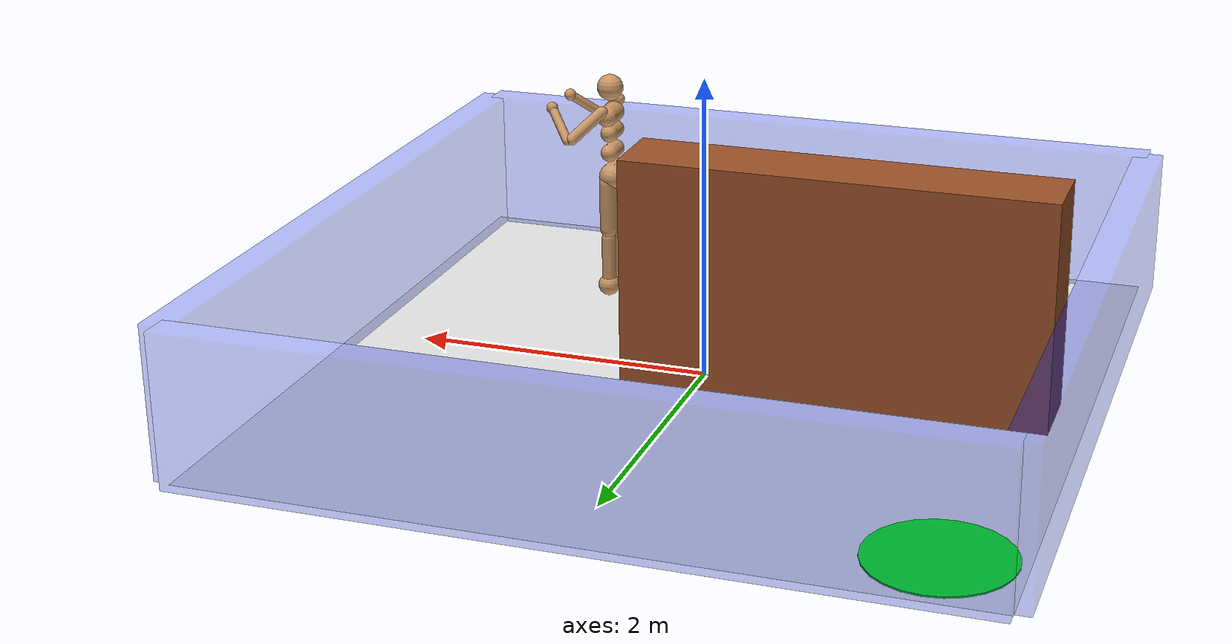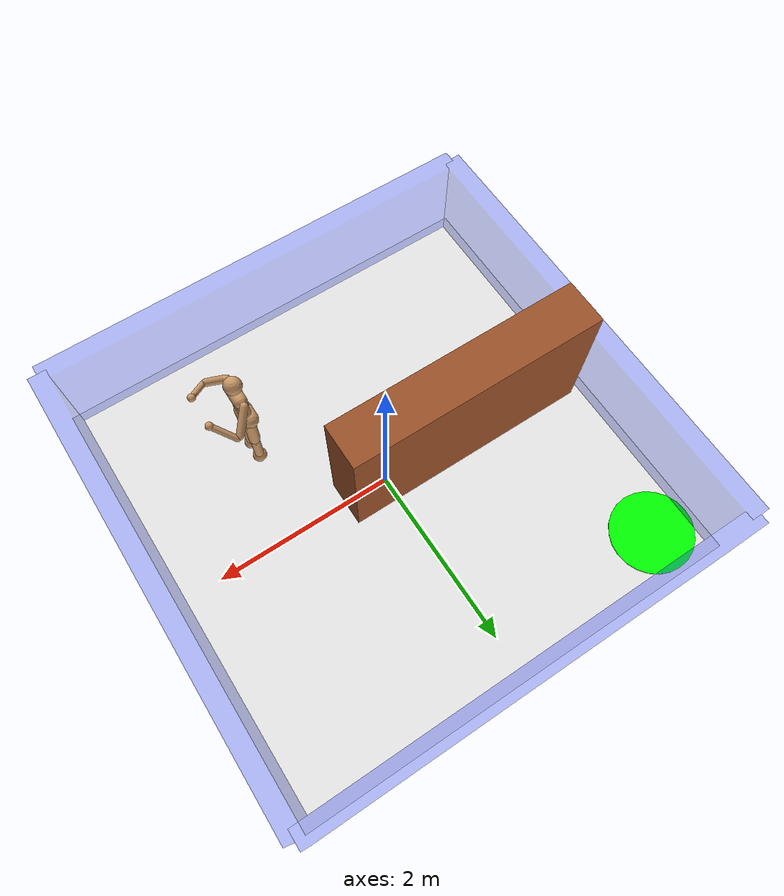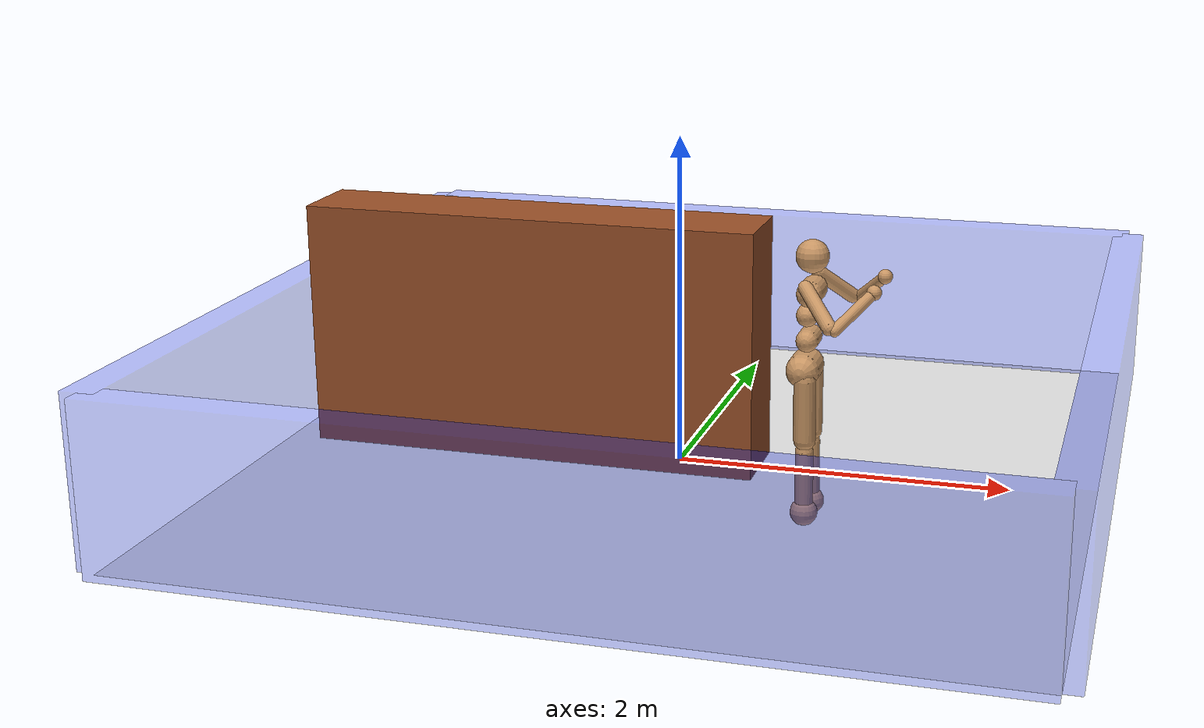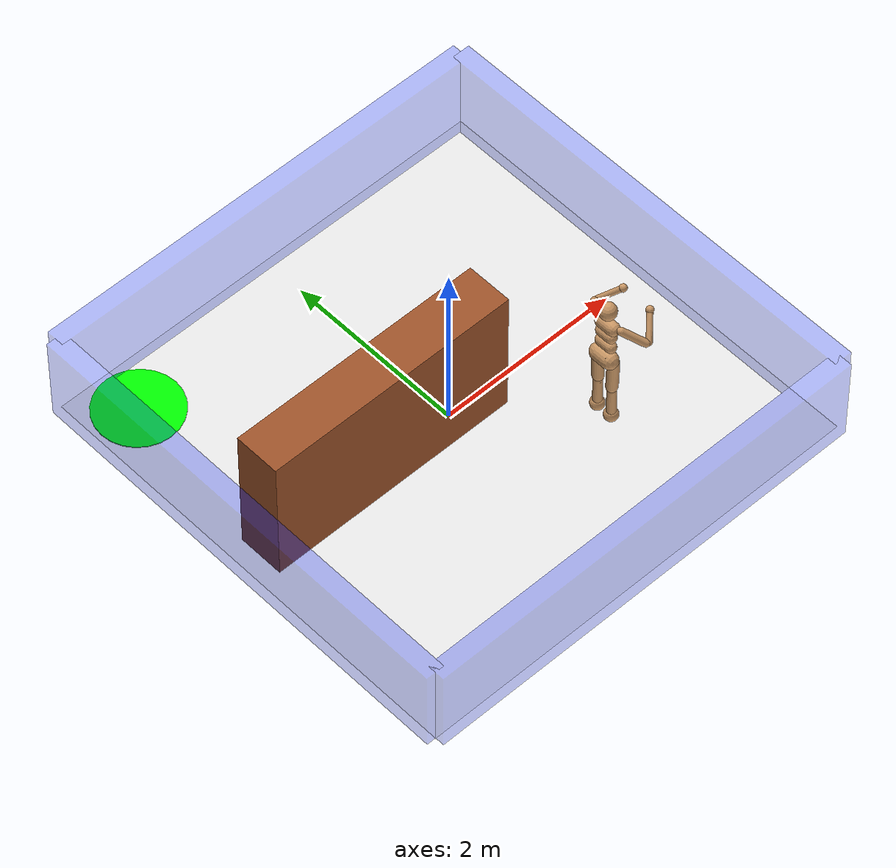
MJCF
<mujoco model="humanoid">
	<compiler inertiafromgeom="true" angle="degree"/>
    	<default>
        	<joint armature="1" damping="1" limited="true"/>
       		 <geom conaffinity="1" condim="1" contype="1" margin="0.001"  rgba="0.8 0.6 .4 1"/>
        	<motor ctrllimited="true" ctrlrange="-.4 .4"/>
    	</default>
    	<option integrator="RK4" iterations="50" solver="PGS" timestep="0.003">
    	</option>

	<asset>
		<texture name="texgeom" type="cube" builtin="flat" mark="cross" width="127" height="1278" rgb1="0.8 0.6 0.4" rgb2="0.8 0.6 0.4" markrgb="1 1 1" random="0.01" />
		<material name='geom' texture="texgeom" texuniform="true" />
	</asset>

	<worldbody>
		<light diffuse=".2 .2 .2" dir="0 0 -1" pos="0 0 2.5" />
		<!--light cutoff="100" diffuse="1 1 1" dir="-0 0 -1.3" directional="true" exponent="1" pos="0 0 1.3" specular=".1 .1 .1"/-->
		<geom conaffinity="1" condim="3" pos="0 0 0" size="2.5 2.5 2.5" rgba="0.9 0.9 0.9 1" type="plane" />
        	<body name="torso" pos="1 -1 1.4">
            		<joint armature="0" damping="0" limited="false" name="root" pos="0 0 0" stiffness="0" type="free"/>
            		<geom fromto="0 -.07 0 0 .07 0" name="torso1" size="0.07" type="capsule"/>
            		<geom name="head" pos="0 0 .19" size=".09" type="sphere" user="258"/>
            		<geom fromto="-.01 -.06 -.12 -.01 .06 -.12" name="uwaist" size="0.06" type="capsule"/>
            		<body name="lwaist" pos="-.01 0 -0.260" quat="1.000 0 -0.002 0">
                		<geom fromto="0 -.06 0 0 .06 0" name="lwaist" size="0.06" type="capsule"/>
                		<joint armature="0.02" axis="0 0 1" damping="5" name="abdomen_z" pos="0 0 0.065" range="-45 45" stiffness="20" type="hinge"/>
                		<joint armature="0.02" axis="0 1 0" damping="5" name="abdomen_y" pos="0 0 0.065" range="-75 30" stiffness="10" type="hinge"/>
                		<body name="pelvis" pos="0 0 -0.165" quat="1.000 0 -0.002 0">
                    			<joint armature="0.02" axis="1 0 0" damping="5" name="abdomen_x" pos="0 0 0.1" range="-35 35" stiffness="10" type="hinge"/>
                    			<geom fromto="-.02 -.07 0 -.02 .07 0" name="butt" size="0.09" type="capsule"/>
                    			<body name="right_thigh" pos="0 -0.1 -0.04">
                        			<joint armature="0.01" axis="1 0 0" damping="5" name="right_hip_x" pos="0 0 0" range="-25 5" stiffness="10" type="hinge"/>
                        			<joint armature="0.01" axis="0 0 1" damping="5" name="right_hip_z" pos="0 0 0" range="-60 35" stiffness="10" type="hinge"/>
                        			<joint armature="0.0080" axis="0 1 0" damping="5" name="right_hip_y" pos="0 0 0" range="-110 20" stiffness="20" type="hinge"/>
                        			<geom fromto="0 0 0 0 0.01 -.34" name="right_thigh1" size="0.06" type="capsule"/>
                        			<body name="right_shin" pos="0 0.01 -0.403">
                            				<joint armature="0.0060" axis="0 -1 0" name="right_knee" pos="0 0 .02" range="-160 -2" type="hinge"/>
                            				<geom fromto="0 0 0 0 0 -.3" name="right_shin1" size="0.049" type="capsule"/>
                            				<body name="right_foot" pos="0 0 -0.45">
                                				<geom name="right_foot" pos="0 0 0.1" size="0.075" type="sphere" user="0"/>
                            				</body>
                        			</body>
                    			</body>
                    			<body name="left_thigh" pos="0 0.1 -0.04">
                        			<joint armature="0.01" axis="-1 0 0" damping="5" name="left_hip_x" pos="0 0 0" range="-25 5" stiffness="10" type="hinge"/>
                        			<joint armature="0.01" axis="0 0 -1" damping="5" name="left_hip_z" pos="0 0 0" range="-60 35" stiffness="10" type="hinge"/>
                        			<joint armature="0.01" axis="0 1 0" damping="5" name="left_hip_y" pos="0 0 0" range="-120 20" stiffness="20" type="hinge"/>
                        			<geom fromto="0 0 0 0 -0.01 -.34" name="left_thigh1" size="0.06" type="capsule"/>
                        			<body name="left_shin" pos="0 -0.01 -0.403">
                            				<joint armature="0.0060" axis="0 -1 0" name="left_knee" pos="0 0 .02" range="-160 -2" stiffness="1" type="hinge"/>
                            				<geom fromto="0 0 0 0 0 -.3" name="left_shin1" size="0.049" type="capsule"/>
                            				<body name="left_foot" pos="0 0 -0.45">
                                				<geom name="left_foot" type="sphere" size="0.075" pos="0 0 0.1" user="0" />
                            				</body>
                        			</body>
                    			</body>
                		</body>
            		</body>
            		<body name="right_upper_arm" pos="0 -0.17 0.06">
                		<joint armature="0.0068" axis="2 1 1" name="right_shoulder1" pos="0 0 0" range="-85 60" stiffness="1" type="hinge"/>
                		<joint armature="0.0051" axis="0 -1 1" name="right_shoulder2" pos="0 0 0" range="-85 60" stiffness="1" type="hinge"/>
                		<geom fromto="0 0 0 .16 -.16 -.16" name="right_uarm1" size="0.04 0.16" type="capsule"/>
                		<body name="right_lower_arm" pos=".18 -.18 -.18">
                    			<joint armature="0.0028" axis="0 -1 1" name="right_elbow" pos="0 0 0" range="-90 50" stiffness="0" type="hinge"/>
                    			<geom fromto="0.01 0.01 0.01 .17 .17 .17" name="right_larm" size="0.031" type="capsule"/>
                    			<geom name="right_hand" pos=".18 .18 .18" size="0.04" type="sphere"/>
                    			<camera pos="0 0 0"/>
                		</body>
			</body>
            		<body name="left_upper_arm" pos="0 0.17 0.06">
                		<joint armature="0.0068" axis="2 -1 1" name="left_shoulder1" pos="0 0 0" range="-60 85" stiffness="1" type="hinge"/>
                		<joint armature="0.0051" axis="0 1 1" name="left_shoulder2" pos="0 0 0" range="-60 85" stiffness="1" type="hinge"/>
                		<geom fromto="0 0 0 .16 .16 -.16" name="left_uarm1" size="0.04 0.16" type="capsule"/>
                		<body name="left_lower_arm" pos=".18 .18 -.18">
                    			<joint armature="0.0028" axis="0 -1 -1" name="left_elbow" pos="0 0 0" range="-90 50" stiffness="0" type="hinge"/>
                    			<geom fromto="0.01 -0.01 0.01 .17 -.17 .17" name="left_larm" size="0.031" type="capsule"/>
                    			<geom name="left_hand" pos=".18 -.18 .18" size="0.04" type="sphere"/>
                		</body>
            		</body>
        	</body>

		<geom pos="0 2.5 .5" conaffinity="1" rgba="0. .1 .9 .3" size="2.5 0.1 .5" type="box"/>
    		<geom pos="0 -2.5 .5" conaffinity="1" rgba="0. .1 .9 .3" size="2.5 0.1 .5" type="box"/>
    		<geom pos="2.5 0 .5" conaffinity="1" rgba="0 .1 .9 .3" size="0.1 2.5 .5" type="box"/>
		<geom pos="-2.5 0 .5" conaffinity="1" rgba="0 .1 .9 .3" size="0.1 2.5 .5" type="box"/>

		<body name="goal" pos = "-2 2 0">
			<geom conaffinity="0" contype="0" density="0.00001" rgba="0 1 0 1" size="0.45 0.005 0.2" type="cylinder"/>
			<joint axis="1 0 0" damping="0.5" name="goal_slidex" pos="0 0 0" range="-10.3213 10.3" type="slide" />
            		<joint axis="0 1 0" damping="0.5" name="goal_slidey" pos="0 0 0" range="-10.3213 10.3" type="slide" />
		</body>

		<body name="obstacle_1" pos="-0.9 0 .75">
			<geom conaffinity="1" contype="1" name="distractor_1" pos="0 0 0" rgba="0.61 0.32 0.16 1" size="1.4 .25 .75" type="box"/>
        	</body>

	</worldbody>

    	<tendon>
        	<fixed name="left_hipknee">
            	<joint coef="-1" joint="left_hip_y"/>
            	<joint coef="1" joint="left_knee"/>
        	</fixed>
        	<fixed name="right_hipknee">
            	<joint coef="-1" joint="right_hip_y"/>
            	<joint coef="1" joint="right_knee"/>
        	</fixed>
    	</tendon>
    <actuator>
        <motor gear="100" joint="abdomen_y" name="abdomen_y"/>
        <motor gear="100" joint="abdomen_z" name="abdomen_z"/>
        <motor gear="100" joint="abdomen_x" name="abdomen_x"/>
        <motor gear="100" joint="right_hip_x" name="right_hip_x"/>
        <motor gear="100" joint="right_hip_z" name="right_hip_z"/>
        <motor gear="300" joint="right_hip_y" name="right_hip_y"/>
        <motor gear="200" joint="right_knee" name="right_knee"/>
        <motor gear="100" joint="left_hip_x" name="left_hip_x"/>
        <motor gear="100" joint="left_hip_z" name="left_hip_z"/>
        <motor gear="300" joint="left_hip_y" name="left_hip_y"/>
        <motor gear="200" joint="left_knee" name="left_knee"/>
        <motor gear="25" joint="right_shoulder1" name="right_shoulder1"/>
        <motor gear="25" joint="right_shoulder2" name="right_shoulder2"/>
        <motor gear="25" joint="right_elbow" name="right_elbow"/>
        <motor gear="25" joint="left_shoulder1" name="left_shoulder1"/>
        <motor gear="25" joint="left_shoulder2" name="left_shoulder2"/>
        <motor gear="25" joint="left_elbow" name="left_elbow"/>
    </actuator>
</mujoco>
